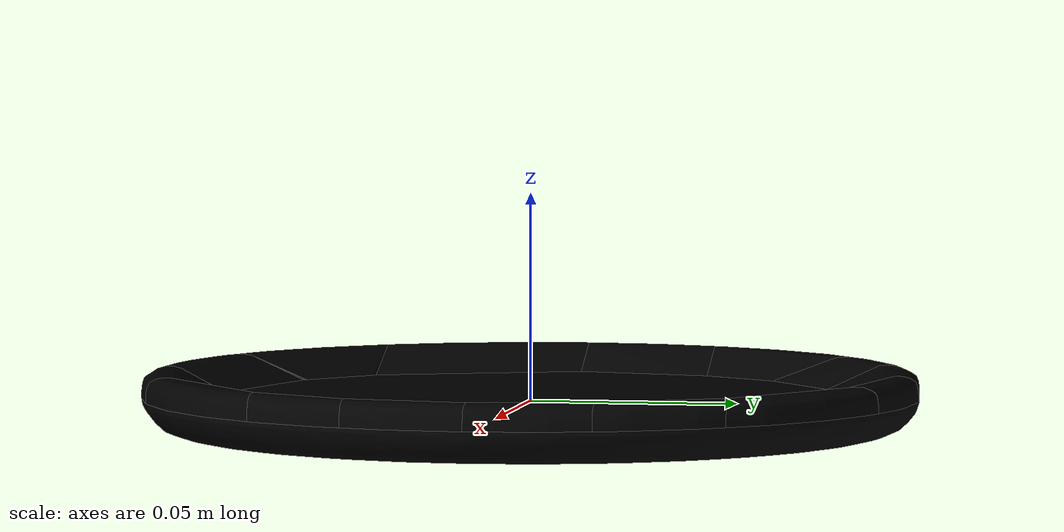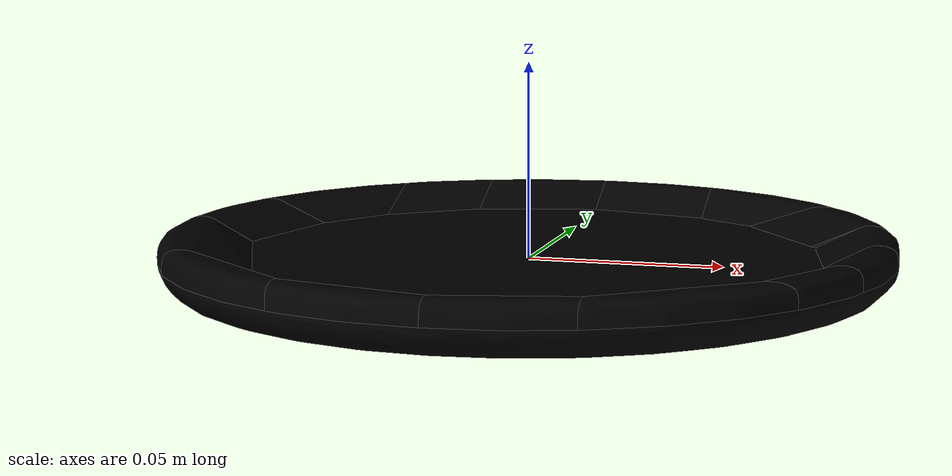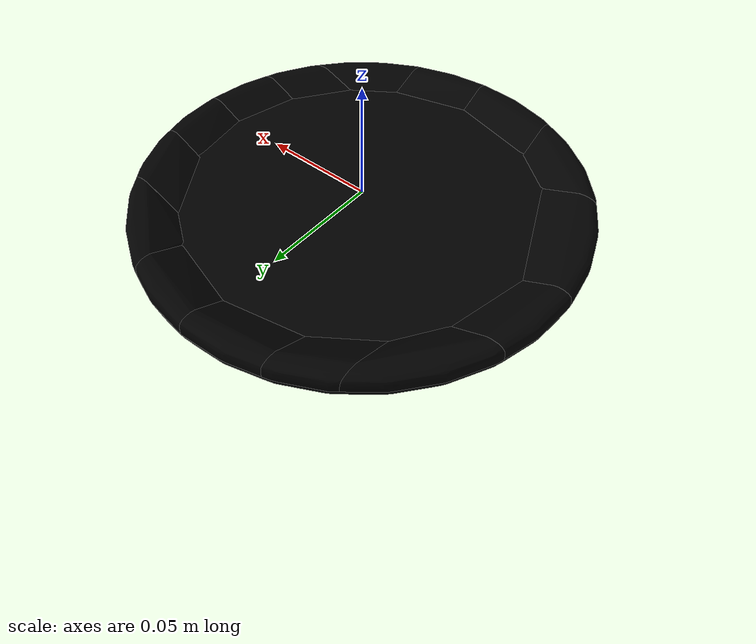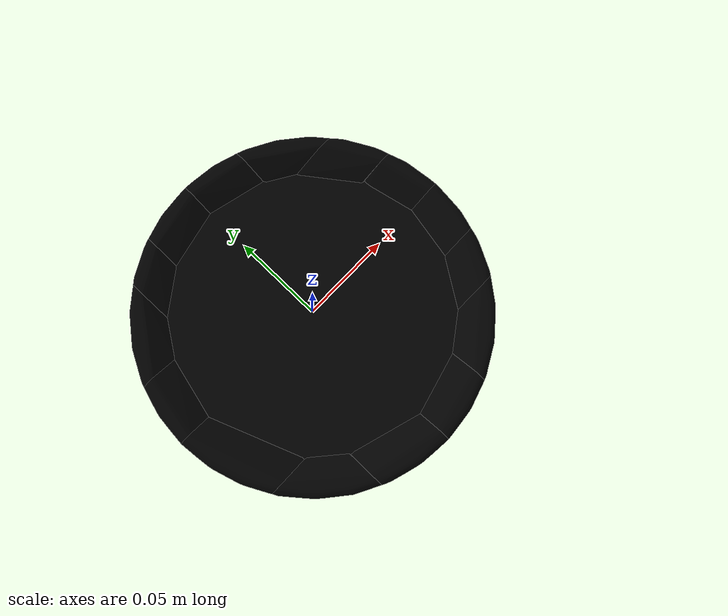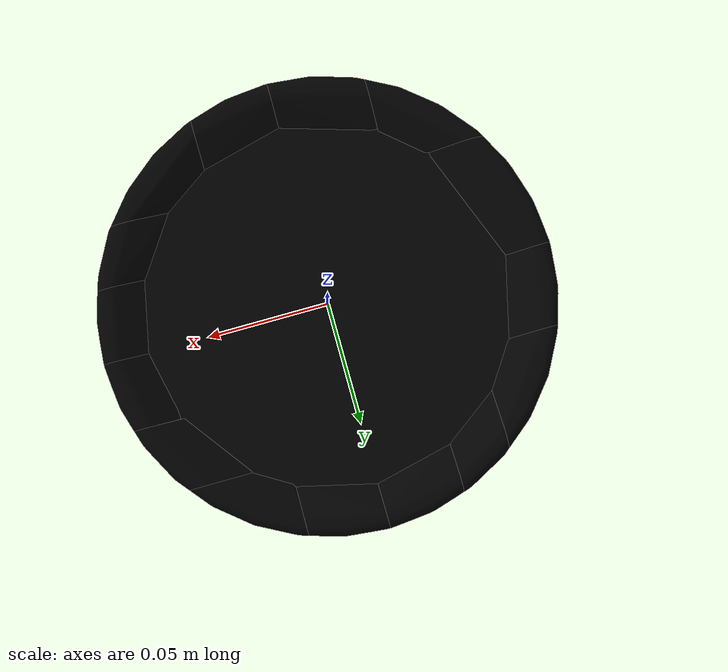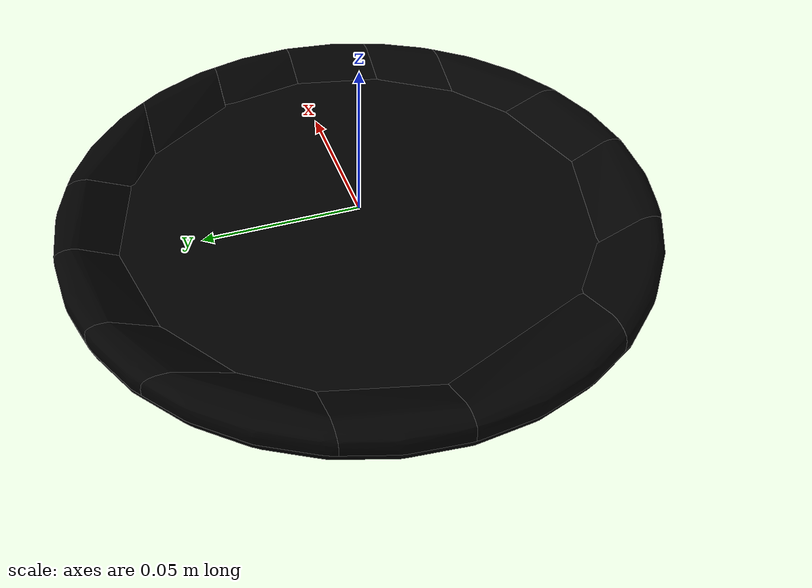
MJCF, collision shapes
<mujoco model="plate_29">
  <asset>
    <mesh file="visual/model_normalized_0.obj" name="model_normalized_0_vis" scale="0.185 0.185 0.185" refquat="1.0 0.0 0.0 0.0" />
    <texture type="2d" name="image0" file="visual/image0.png" />
    <material name="Material.wooden-plate" texture="image0" specular="0.5" shininess="0.25" />
    <mesh file="collision/model_collision_0.obj" name="model_collision_0" scale="0.185 0.185 0.185" refquat="1.0 0.0 0.0 0.0" />
    <mesh file="collision/model_collision_1.obj" name="model_collision_1" scale="0.185 0.185 0.185" refquat="1.0 0.0 0.0 0.0" />
    <mesh file="collision/model_collision_2.obj" name="model_collision_2" scale="0.185 0.185 0.185" refquat="1.0 0.0 0.0 0.0" />
    <mesh file="collision/model_collision_3.obj" name="model_collision_3" scale="0.185 0.185 0.185" refquat="1.0 0.0 0.0 0.0" />
    <mesh file="collision/model_collision_4.obj" name="model_collision_4" scale="0.185 0.185 0.185" refquat="1.0 0.0 0.0 0.0" />
    <mesh file="collision/model_collision_5.obj" name="model_collision_5" scale="0.185 0.185 0.185" refquat="1.0 0.0 0.0 0.0" />
    <mesh file="collision/model_collision_6.obj" name="model_collision_6" scale="0.185 0.185 0.185" refquat="1.0 0.0 0.0 0.0" />
    <mesh file="collision/model_collision_7.obj" name="model_collision_7" scale="0.185 0.185 0.185" refquat="1.0 0.0 0.0 0.0" />
    <mesh file="collision/model_collision_8.obj" name="model_collision_8" scale="0.185 0.185 0.185" refquat="1.0 0.0 0.0 0.0" />
    <mesh file="collision/model_collision_9.obj" name="model_collision_9" scale="0.185 0.185 0.185" refquat="1.0 0.0 0.0 0.0" />
    <mesh file="collision/model_collision_10.obj" name="model_collision_10" scale="0.185 0.185 0.185" refquat="1.0 0.0 0.0 0.0" />
    <mesh file="collision/model_collision_11.obj" name="model_collision_11" scale="0.185 0.185 0.185" refquat="1.0 0.0 0.0 0.0" />
    <mesh file="collision/model_collision_12.obj" name="model_collision_12" scale="0.185 0.185 0.185" refquat="1.0 0.0 0.0 0.0" />
    <mesh file="collision/model_collision_13.obj" name="model_collision_13" scale="0.185 0.185 0.185" refquat="1.0 0.0 0.0 0.0" />
    <mesh file="collision/model_collision_14.obj" name="model_collision_14" scale="0.185 0.185 0.185" refquat="1.0 0.0 0.0 0.0" />
    <mesh file="collision/model_collision_15.obj" name="model_collision_15" scale="0.185 0.185 0.185" refquat="1.0 0.0 0.0 0.0" />
  </asset>
  <default>
    <default class="region">
      <geom group="1" conaffinity="0" contype="0" rgba="0 1 0 0" />
    </default>
  </default>
  <worldbody>
    <body>
      <body name="object">
        <geom density="0" type="mesh" mesh="model_normalized_0_vis" conaffinity="0" contype="0" group="2" material="Material.wooden-plate" mass="0.18" />
        <geom class="region" name="reg_bbox" type="box" pos="0.0004723207249999968 -6.20841499999994e-05 1.8500000004140205e-09" size="0.09182995405 0.0908853126 0.0061742566" />
        <geom density="0" friction="1.2 0.1 0.001" type="mesh" group="3" rgba="0 0 0 0" mesh="model_collision_0"  condim="4"/>        <geom density="0" friction="1.2 0.1 0.001" type="mesh" group="3" rgba="0 0 0 0" mesh="model_collision_1"  condim="4"/>        <geom density="0" friction="1.2 0.1 0.001" type="mesh" group="3" rgba="0 0 0 0" mesh="model_collision_2"  condim="4"/>        <geom density="0" friction="1.2 0.1 0.001" type="mesh" group="3" rgba="0 0 0 0" mesh="model_collision_3"  condim="4"/>        <geom density="0" friction="1.2 0.1 0.001" type="mesh" group="3" rgba="0 0 0 0" mesh="model_collision_4"  condim="4"/>        <geom density="0" friction="1.2 0.1 0.001" type="mesh" group="3" rgba="0 0 0 0" mesh="model_collision_5"  condim="4"/>        <geom density="0" friction="1.2 0.1 0.001" type="mesh" group="3" rgba="0 0 0 0" mesh="model_collision_6"  condim="4"/>        <geom density="0" friction="1.2 0.1 0.001" type="mesh" group="3" rgba="0 0 0 0" mesh="model_collision_7"  condim="4"/>        <geom density="0" friction="1.2 0.1 0.001" type="mesh" group="3" rgba="0 0 0 0" mesh="model_collision_8"  condim="4"/>        <geom density="0" friction="1.2 0.1 0.001" type="mesh" group="3" rgba="0 0 0 0" mesh="model_collision_9"  condim="4"/>        <geom density="0" friction="1.2 0.1 0.001" type="mesh" group="3" rgba="0 0 0 0" mesh="model_collision_10"  condim="4"/>        <geom density="0" friction="1.2 0.1 0.001" type="mesh" group="3" rgba="0 0 0 0" mesh="model_collision_11"  condim="4"/>        <geom density="0" friction="1.2 0.1 0.001" type="mesh" group="3" rgba="0 0 0 0" mesh="model_collision_12"  condim="4"/>        <geom density="0" friction="1.2 0.1 0.001" type="mesh" group="3" rgba="0 0 0 0" mesh="model_collision_13"  condim="4"/>        <geom density="0" friction="1.2 0.1 0.001" type="mesh" group="3" rgba="0 0 0 0" mesh="model_collision_14"  condim="4"/>        <geom density="0" friction="1.2 0.1 0.001" type="mesh" group="3" rgba="0 0 0 0" mesh="model_collision_15"  condim="4"/>      </body>
    </body>
  </worldbody>
</mujoco>
